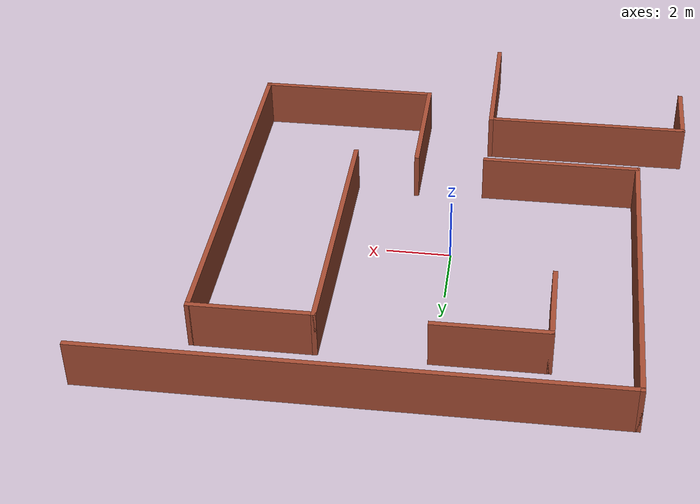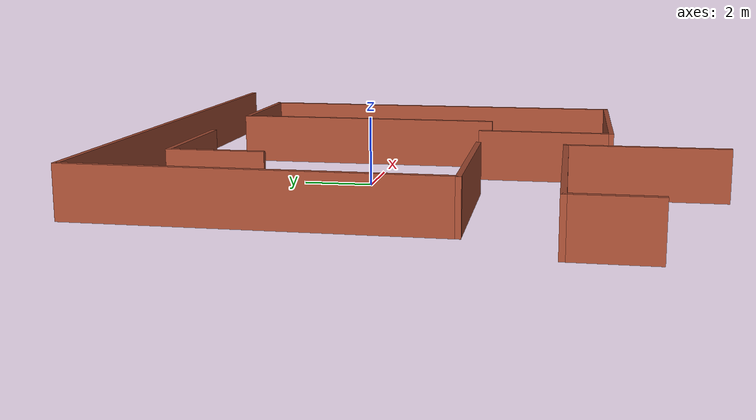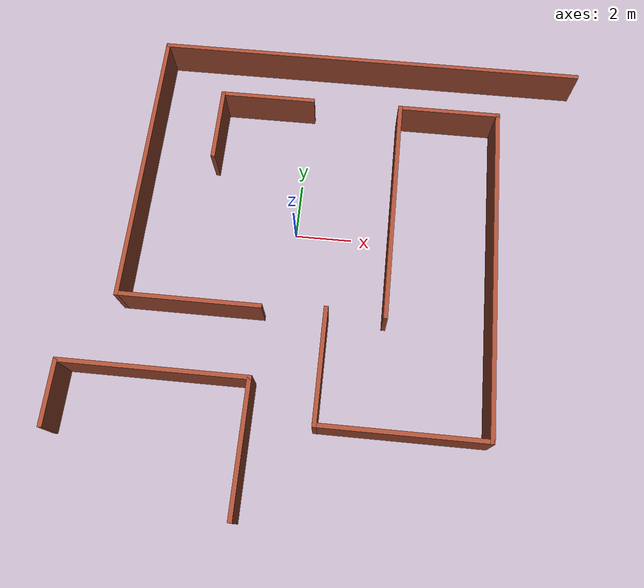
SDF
<?xml version='1.0'?>
<sdf version='1.7'>
  <model name='maze'>
    <pose>1.384 -1.5665 0 0 -0 0</pose>
    <link name='Wall_0'>
      <collision name='Wall_0_Collision'>
        <geometry>
          <box>
            <size>5 0.15 1.5</size>
          </box>
        </geometry>
        <pose>0 0 0.75 0 -0 0</pose>
      </collision>
      <visual name='Wall_0_Visual'>
        <pose>0 0 0.75 0 -0 0</pose>
        <geometry>
          <box>
            <size>5 0.15 1.5</size>
          </box>
        </geometry>
        <material>
          <script>
            <uri>file://media/materials/scripts/gazebo.material</uri>
            <name>Gazebo/Bricks</name>
          </script>
          <ambient>1 1 1 1</ambient>
        </material>
        <meta>
          <layer>0</layer>
        </meta>
      </visual>
      <pose>-4.619 -1.6635 0 0 -0 3.14159</pose>
    </link>
    <link name='Wall_1'>
      <collision name='Wall_1_Collision'>
        <geometry>
          <box>
            <size>10.25 0.15 1.5</size>
          </box>
        </geometry>
        <pose>0 0 0.75 0 -0 0</pose>
      </collision>
      <visual name='Wall_1_Visual'>
        <pose>0 0 0.75 0 -0 0</pose>
        <geometry>
          <box>
            <size>10.25 0.15 1.5</size>
          </box>
        </geometry>
        <material>
          <script>
            <uri>file://media/materials/scripts/gazebo.material</uri>
            <name>Gazebo/Bricks</name>
          </script>
          <ambient>1 1 1 1</ambient>
        </material>
        <meta>
          <layer>0</layer>
        </meta>
      </visual>
      <pose>-7.044 3.3865 0 0 -0 1.5708</pose>
    </link>
    <link name='Wall_10'>
      <collision name='Wall_10_Collision'>
        <geometry>
          <box>
            <size>4.5 0.15 1.5</size>
          </box>
        </geometry>
        <pose>0 0 0.75 0 -0 0</pose>
      </collision>
      <visual name='Wall_10_Visual'>
        <pose>0 0 0.75 0 -0 0</pose>
        <geometry>
          <box>
            <size>4.5 0.15 1.5</size>
          </box>
        </geometry>
        <material>
          <script>
            <uri>file://media/materials/scripts/gazebo.material</uri>
            <name>Gazebo/Bricks</name>
          </script>
          <ambient>1 1 1 1</ambient>
        </material>
        <meta>
          <layer>0</layer>
        </meta>
      </visual>
      <pose>-2.206 -6.2615 0 0 -0 -1.5708</pose>
    </link>
    <link name='Wall_13'>
      <collision name='Wall_13_Collision'>
        <geometry>
          <box>
            <size>6.5 0.15 1.5</size>
          </box>
        </geometry>
        <pose>0 0 0.75 0 -0 0</pose>
      </collision>
      <visual name='Wall_13_Visual'>
        <pose>0 0 0.75 0 -0 0</pose>
        <geometry>
          <box>
            <size>6.5 0.15 1.5</size>
          </box>
        </geometry>
        <material>
          <script>
            <uri>file://media/materials/scripts/gazebo.material</uri>
            <name>Gazebo/Bricks</name>
          </script>
          <ambient>1 1 1 1</ambient>
        </material>
        <meta>
          <layer>0</layer>
        </meta>
      </visual>
      <pose>-5.381 -4.0865 0 0 -0 3.14159</pose>
    </link>
    <link name='Wall_14'>
      <collision name='Wall_14_Collision'>
        <geometry>
          <box>
            <size>2.25 0.15 1.5</size>
          </box>
        </geometry>
        <pose>0 0 0.75 0 -0 0</pose>
      </collision>
      <visual name='Wall_14_Visual'>
        <pose>0 0 0.75 0 -0 0</pose>
        <geometry>
          <box>
            <size>2.25 0.15 1.5</size>
          </box>
        </geometry>
        <material>
          <script>
            <uri>file://media/materials/scripts/gazebo.material</uri>
            <name>Gazebo/Bricks</name>
          </script>
          <ambient>1 1 1 1</ambient>
        </material>
        <meta>
          <layer>0</layer>
        </meta>
      </visual>
      <pose>-8.556 -5.1365 0 0 -0 -1.5708</pose>
    </link>
    <link name='Wall_16'>
      <collision name='Wall_16_Collision'>
        <geometry>
          <box>
            <size>2.75 0.15 1.5</size>
          </box>
        </geometry>
        <pose>0 0 0.75 0 -0 0</pose>
      </collision>
      <visual name='Wall_16_Visual'>
        <pose>0 0 0.75 0 -0 0</pose>
        <geometry>
          <box>
            <size>2.75 0.15 1.5</size>
          </box>
        </geometry>
        <material>
          <script>
            <uri>file://media/materials/scripts/gazebo.material</uri>
            <name>Gazebo/Bricks</name>
          </script>
          <ambient>1 1 1 1</ambient>
        </material>
        <meta>
          <layer>0</layer>
        </meta>
      </visual>
      <pose>-4.614 5.1695 0 0 -0 1.5708</pose>
    </link>
    <link name='Wall_17'>
      <collision name='Wall_17_Collision'>
        <geometry>
          <box>
            <size>3.5 0.15 1.5</size>
          </box>
        </geometry>
        <pose>0 0 0.75 0 -0 0</pose>
      </collision>
      <visual name='Wall_17_Visual'>
        <pose>0 0 0.75 0 -0 0</pose>
        <geometry>
          <box>
            <size>3.5 0.15 1.5</size>
          </box>
        </geometry>
        <material>
          <script>
            <uri>file://media/materials/scripts/gazebo.material</uri>
            <name>Gazebo/Bricks</name>
          </script>
          <ambient>1 1 1 1</ambient>
        </material>
        <meta>
          <layer>0</layer>
        </meta>
      </visual>
      <pose>-2.939 6.4695 0 0 -0 0</pose>
    </link>
    <link name='Wall_2'>
      <collision name='Wall_2_Collision'>
        <geometry>
          <box>
            <size>15.75 0.15 1.5</size>
          </box>
        </geometry>
        <pose>0 0 0.75 0 -0 0</pose>
      </collision>
      <visual name='Wall_2_Visual'>
        <pose>0 0 0.75 0 -0 0</pose>
        <geometry>
          <box>
            <size>15.75 0.15 1.5</size>
          </box>
        </geometry>
        <material>
          <script>
            <uri>file://media/materials/scripts/gazebo.material</uri>
            <name>Gazebo/Bricks</name>
          </script>
          <ambient>1 1 1 1</ambient>
        </material>
        <meta>
          <layer>0</layer>
        </meta>
      </visual>
      <pose>0.756 8.4365 0 0 -0 0</pose>
    </link>
    <link name='Wall_4'>
      <collision name='Wall_4_Collision'>
        <geometry>
          <box>
            <size>8.25 0.15 1.5</size>
          </box>
        </geometry>
        <pose>0 0 0.75 0 -0 0</pose>
      </collision>
      <visual name='Wall_4_Visual'>
        <pose>0 0 0.75 0 -0 0</pose>
        <geometry>
          <box>
            <size>8.25 0.15 1.5</size>
          </box>
        </geometry>
        <material>
          <script>
            <uri>file://media/materials/scripts/gazebo.material</uri>
            <name>Gazebo/Bricks</name>
          </script>
          <ambient>1 1 1 1</ambient>
        </material>
        <meta>
          <layer>0</layer>
        </meta>
      </visual>
      <pose>2.02 2.4085 0 0 -0 1.5708</pose>
    </link>
    <link name='Wall_5'>
      <collision name='Wall_5_Collision'>
        <geometry>
          <box>
            <size>3.75 0.15 1.5</size>
          </box>
        </geometry>
        <pose>0 0 0.75 0 -0 0</pose>
      </collision>
      <visual name='Wall_5_Visual'>
        <pose>0 0 0.75 0 -0 0</pose>
        <geometry>
          <box>
            <size>3.75 0.15 1.5</size>
          </box>
        </geometry>
        <material>
          <script>
            <uri>file://media/materials/scripts/gazebo.material</uri>
            <name>Gazebo/Bricks</name>
          </script>
          <ambient>1 1 1 1</ambient>
        </material>
        <meta>
          <layer>0</layer>
        </meta>
      </visual>
      <pose>3.82 6.4585 0 0 -0 0</pose>
    </link>
    <link name='Wall_6'>
      <collision name='Wall_6_Collision'>
        <geometry>
          <box>
            <size>12 0.15 1.5</size>
          </box>
        </geometry>
        <pose>0 0 0.75 0 -0 0</pose>
      </collision>
      <visual name='Wall_6_Visual'>
        <pose>0 0 0.75 0 -0 0</pose>
        <geometry>
          <box>
            <size>12 0.15 1.5</size>
          </box>
        </geometry>
        <material>
          <script>
            <uri>file://media/materials/scripts/gazebo.material</uri>
            <name>Gazebo/Bricks</name>
          </script>
          <ambient>1 1 1 1</ambient>
        </material>
        <meta>
          <layer>0</layer>
        </meta>
      </visual>
      <pose>5.62 0.5335 0 0 -0 -1.5708</pose>
    </link>
    <link name='Wall_7'>
      <collision name='Wall_7_Collision'>
        <geometry>
          <box>
            <size>5.75 0.15 1.5</size>
          </box>
        </geometry>
        <pose>0 0 0.75 0 -0 0</pose>
      </collision>
      <visual name='Wall_7_Visual'>
        <pose>0 0 0.75 0 -0 0</pose>
        <geometry>
          <box>
            <size>5.75 0.15 1.5</size>
          </box>
        </geometry>
        <material>
          <script>
            <uri>file://media/materials/scripts/gazebo.material</uri>
            <name>Gazebo/Bricks</name>
          </script>
          <ambient>1 1 1 1</ambient>
        </material>
        <meta>
          <layer>0</layer>
        </meta>
      </visual>
      <pose>2.82 -5.3915 0 0 -0 3.14159</pose>
    </link>
    <link name='Wall_8'>
      <collision name='Wall_8_Collision'>
        <geometry>
          <box>
            <size>4 0.15 1.5</size>
          </box>
        </geometry>
        <pose>0 0 0.75 0 -0 0</pose>
      </collision>
      <visual name='Wall_8_Visual'>
        <pose>0 0 0.75 0 -0 0</pose>
        <geometry>
          <box>
            <size>4 0.15 1.5</size>
          </box>
        </geometry>
        <material>
          <script>
            <uri>file://media/materials/scripts/gazebo.material</uri>
            <name>Gazebo/Bricks</name>
          </script>
          <ambient>1 1 1 1</ambient>
        </material>
        <meta>
          <layer>0</layer>
        </meta>
      </visual>
      <pose>0.02 -3.4665 0 0 -0 1.5708</pose>
    </link>
    <static>1</static>
  </model>
</sdf>
